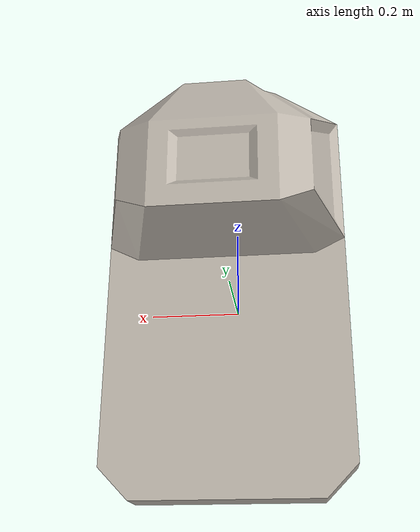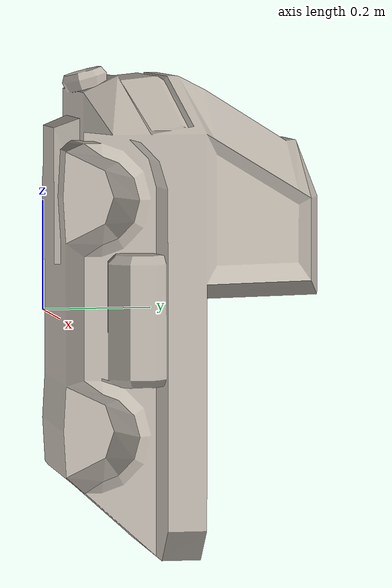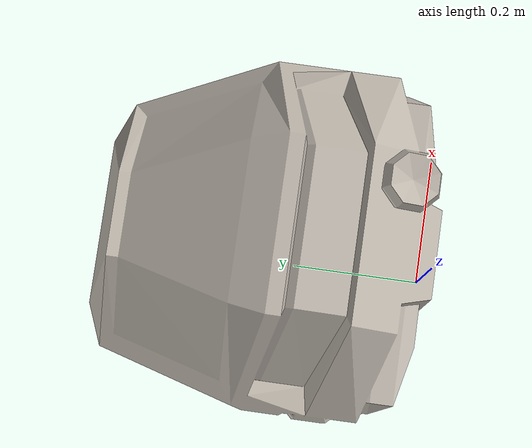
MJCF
<mujoco model="spacetruck">
  <default>
    <default class="visual">
      <geom group="2" type="mesh" contype="0" conaffinity="0" />
    </default>
    <default class="collision">
      <geom group="3" type="mesh" />
    </default>
  </default>
  <asset>
    <texture type="2d" name="spacetruck_spacebits_texture" file="spacebits_texture.png" />
    <material name="spacetruck_spacebits_texture" texture="spacetruck_spacebits_texture" specular="0.50196078" shininess="0.15999998099999999" />
    <mesh file="spacetruck.obj" name="spacetruck_spacetruck" />
  </asset>
  <worldbody>
    <body name="spacetruck">
      <geom material="spacetruck_spacebits_texture" mesh="spacetruck_spacetruck" class="visual" />
      <geom mesh="spacetruck_spacetruck" class="collision" />
    </body>
  </worldbody>
</mujoco>
